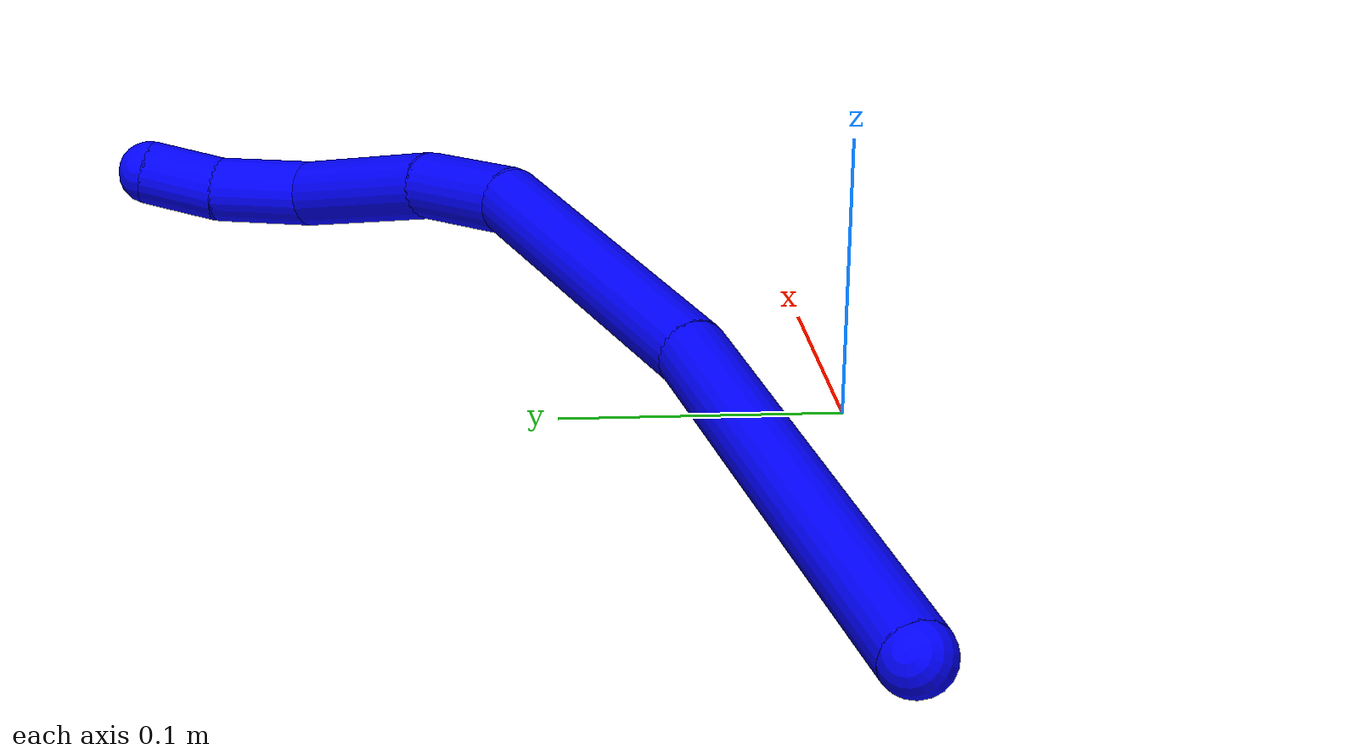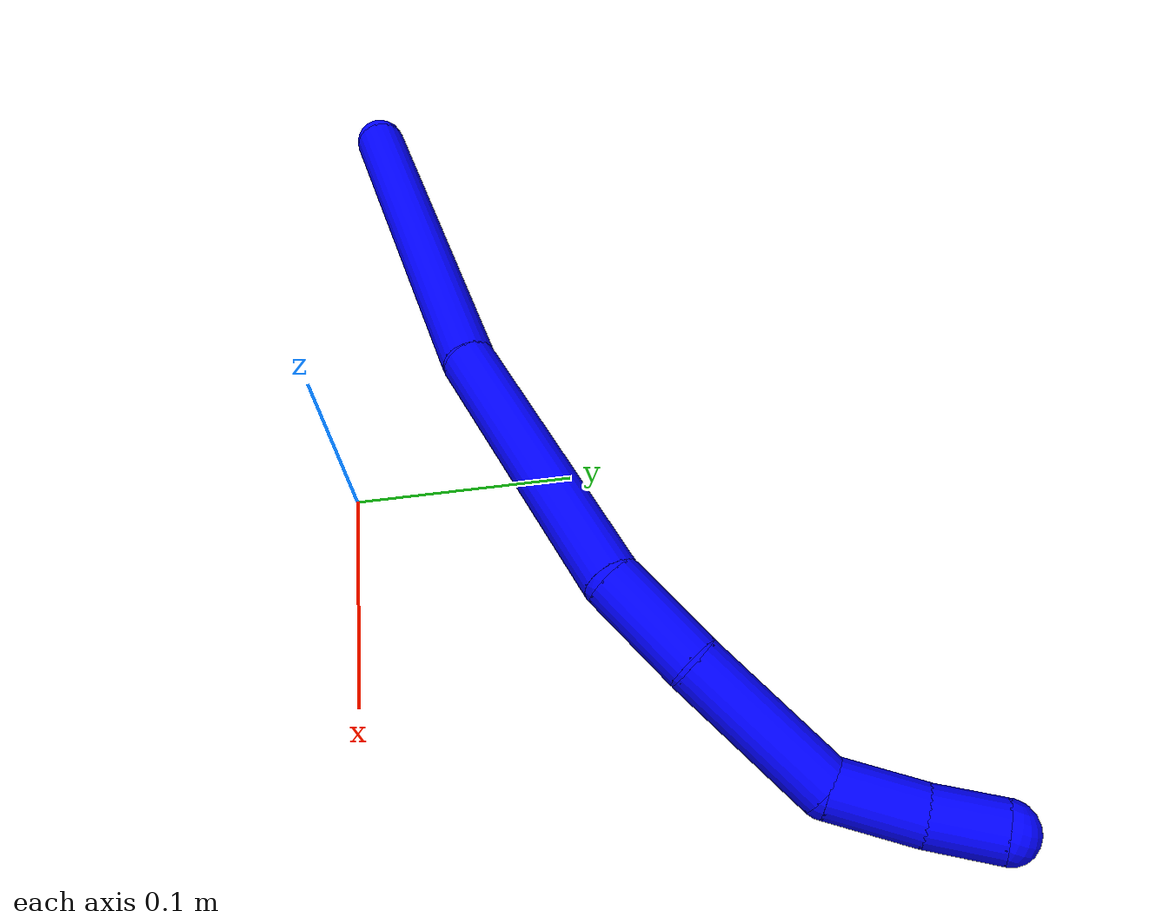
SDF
<sdf version="1.7">
 <world name="default">
  <plugin name="TubeGeneratorPlugin" filename="libtube_generator_plugin.so"/>
  <model name="photoneo_s_sensor">
   <static>1</static>
   <pose>0 0 2 1.57079 1.57079 3.14159</pose>
   <link name="link">
    <inertial><mass>0.1</mass></inertial>
    <sensor name="sensor" type="depth">
     <update_rate>30</update_rate>
     <camera>
      <horizontal_fov>1.22</horizontal_fov>
      <image><width>1920</width><height>1200</height><format>B8G8R8</format></image>
      <clip><near>0.1</near><far>4</far></clip>
      <depth_camera><output>points</output></depth_camera>
     </camera>
     <plugin name="camera_plugin" filename="libgazebo_ros_depth_camera.so">
      <baseline>0.2</baseline>
      <alwaysOn>1</alwaysOn>
      <updateRate>0.0</updateRate>
      <cameraName>camera_ir</cameraName>
      <imageTopicName>/camera/color/image_raw</imageTopicName>
      <cameraInfoTopicName>/camera/color/camera_info</cameraInfoTopicName>
      <depthImageTopicName>/camera/depth/image_raw</depthImageTopicName>
      <depthImageCameraInfoTopicName>/camera/depth/camera_info</depthImageCameraInfoTopicName>
      <pointCloudTopicName>/camera/depth/points</pointCloudTopicName>
      <frameName>fr_optical</frameName>
      <pointCloudCutoff>0.1</pointCloudCutoff>
      <pointCloudCutoffMax>2.0</pointCloudCutoffMax>
      <distortionK1>0</distortionK1>
      <distortionK2>0</distortionK2>
      <distortionK3>0</distortionK3>
      <distortionT1>0</distortionT1>
      <distortionT2>0</distortionT2>
      <CxPrime>0</CxPrime>
      <Cx>0</Cx>
      <Cy>0</Cy>
      <focalLength>0</focalLength>
      <hackBaseline>0</hackBaseline>
     </plugin>
    </sensor>
   </link>
  </model>
  <gravity>0 0 -9.8</gravity>
  <magnetic_field>6e-06 2.3e-05 -4.2e-05</magnetic_field>
  <atmosphere type="adiabatic"/>
  <physics name="default_physics" default="0" type="ode">
   <max_step_size>0.003</max_step_size>
   <real_time_factor>1</real_time_factor>
   <real_time_update_rate>1000</real_time_update_rate>
   <max_contacts>10000</max_contacts>
   <ode>
    <solver>
     <type>quick</type>
     <iters>100</iters>
     <sor>1.3</sor>
     <use_dynamic_moi_rescaling>0</use_dynamic_moi_rescaling>
    </solver>
    <constraints>
     <contact_max_correcting_vel>0</contact_max_correcting_vel>
     <contact_surface_layer>0.001</contact_surface_layer>
     <cfm>0</cfm>
     <erp>0.2</erp>
    </constraints>
   </ode>
  </physics>
  <scene><ambient>0.4 0.4 0.4 1</ambient><background>0.7 0.7 0.7 1</background><shadows>0</shadows></scene>
  <audio><device>default</device></audio>
  <spherical_coordinates>
   <surface_model>EARTH_WGS84</surface_model>
   <latitude_deg>0</latitude_deg>
   <longitude_deg>0</longitude_deg>
   <elevation>0</elevation>
   <heading_deg>0</heading_deg>
  </spherical_coordinates>
  <model name="bin">
   <static>1</static>
   <link name="bottom">
    <collision name="collision-bottom">
     <pose>0 0 -0.01 0 -0 0</pose>
     <geometry><box><size>0.8 0.6 0.02</size></box></geometry>
     <surface>
      <friction><ode><mu>100</mu><mu2>100</mu2></ode></friction>
      <contact><collide_bitmask>65535</collide_bitmask></contact>
     </surface>
    </collision>
   </link>
   <link name="west_wall">
    <collision name="collision-west_wall">
     <pose>-0.41 0 0.1 0 -0 0</pose>
     <geometry><box><size>0.02 0.6 0.2</size></box></geometry>
     <surface>
      <friction><ode><mu>100</mu><mu2>100</mu2></ode></friction>
      <contact><collide_bitmask>65535</collide_bitmask></contact>
     </surface>
    </collision>
   </link>
   <link name="east_wall">
    <collision name="collision-east_wall">
     <pose>0.41 0 0.1 0 -0 0</pose>
     <geometry><box><size>0.02 0.6 0.2</size></box></geometry>
     <surface>
      <friction><ode><mu>100</mu><mu2>100</mu2></ode></friction>
      <contact><collide_bitmask>65535</collide_bitmask></contact>
     </surface>
    </collision>
   </link>
   <link name="south_wall">
    <collision name="collision-south_wall">
     <pose>0 -0.31 0.1 0 -0 0</pose>
     <geometry><box><size>0.8 0.02 0.2</size></box></geometry>
     <surface>
      <friction><ode><mu>100</mu><mu2>100</mu2></ode></friction>
      <contact><collide_bitmask>65535</collide_bitmask></contact>
     </surface>
    </collision>
   </link>
   <link name="north_wall">
    <collision name="collision-north_wall">
     <pose>0 0.31 0.1 0 -0 0</pose>
     <geometry><box><size>0.8 0.02 0.2</size></box></geometry>
     <surface>
      <friction><ode><mu>100</mu><mu2>100</mu2></ode></friction>
      <contact><collide_bitmask>65535</collide_bitmask></contact>
     </surface>
    </collision>
   </link>
  </model>
  <model name="1">
   <static>0</static>
   <link name="1">
    <collision name="collision-cylinder-e_1_1_4">
     <pose>0.005158 0.076764 0.047371 -1.01791 0.057116 -0.031876</pose>
     <geometry><cylinder><radius>0.0125</radius><length>0.180702</length></cylinder></geometry>
     <surface>
      <friction><ode><mu>1.16</mu><mu2>1.16</mu2><slip1>0</slip1><slip2>0</slip2></ode></friction>
      <contact><ode><kp>1e+06</kp><kd>1</kd><max_vel>0</max_vel><min_depth>0.001</min_depth></ode></contact>
     </surface>
    </collision>
    <visual name="visual-cylinder-e_1_1_4">
     <pose>0.005158 0.076764 0.047371 -1.01791 0.057116 -0.031876</pose>
     <geometry><cylinder><radius>0.0125</radius><length>0.180702</length></cylinder></geometry>
     <material><ambient>0 0 1 1</ambient></material>
    </visual>
    <collision name="collision-cylinder-e_2_4_5">
     <pose>0.023823 0.212303 0.125302 -1.09129 0.201148 -0.122384</pose>
     <geometry><cylinder><radius>0.0125</radius><length>0.135216</length></cylinder></geometry>
     <surface>
      <friction><ode><mu>1.16</mu><mu2>1.16</mu2><slip1>0</slip1><slip2>0</slip2></ode></friction>
      <contact><ode><kp>1e+06</kp><kd>1</kd><max_vel>0</max_vel><min_depth>0.001</min_depth></ode></contact>
     </surface>
    </collision>
    <visual name="visual-cylinder-e_2_4_5">
     <pose>0.023823 0.212303 0.125302 -1.09129 0.201148 -0.122384</pose>
     <geometry><cylinder><radius>0.0125</radius><length>0.135216</length></cylinder></geometry>
     <material><ambient>0 0 1 1</ambient></material>
    </visual>
    <collision name="collision-cylinder-e_3_5_6">
     <pose>0.049028 0.288894 0.164641 -1.11306 0.532213 -0.335952</pose>
     <geometry><cylinder><radius>0.0125</radius><length>0.046101</length></cylinder></geometry>
     <surface>
      <friction><ode><mu>1.16</mu><mu2>1.16</mu2><slip1>0</slip1><slip2>0</slip2></ode></friction>
      <contact><ode><kp>1e+06</kp><kd>1</kd><max_vel>0</max_vel><min_depth>0.001</min_depth></ode></contact>
     </surface>
    </collision>
    <visual name="visual-cylinder-e_3_5_6">
     <pose>0.049028 0.288894 0.164641 -1.11306 0.532213 -0.335952</pose>
     <geometry><cylinder><radius>0.0125</radius><length>0.046101</length></cylinder></geometry>
     <material><ambient>0 0 1 1</ambient></material>
    </visual>
    <collision name="collision-cylinder-e_4_6_7">
     <pose>0.08294 0.329499 0.186601 -1.04634 0.700928 -0.415601</pose>
     <geometry><cylinder><radius>0.0125</radius><length>0.068892</length></cylinder></geometry>
     <surface>
      <friction><ode><mu>1.16</mu><mu2>1.16</mu2><slip1>0</slip1><slip2>0</slip2></ode></friction>
      <contact><ode><kp>1e+06</kp><kd>1</kd><max_vel>0</max_vel><min_depth>0.001</min_depth></ode></contact>
     </surface>
    </collision>
    <visual name="visual-cylinder-e_4_6_7">
     <pose>0.08294 0.329499 0.186601 -1.04634 0.700928 -0.415601</pose>
     <geometry><cylinder><radius>0.0125</radius><length>0.068892</length></cylinder></geometry>
     <material><ambient>0 0 1 1</ambient></material>
    </visual>
    <collision name="collision-cylinder-e_5_7_8">
     <pose>0.119216 0.36545 0.198131 -1.69566 0.814438 -0.909381</pose>
     <geometry><cylinder><radius>0.0125</radius><length>0.038666</length></cylinder></geometry>
     <surface>
      <friction><ode><mu>1.16</mu><mu2>1.16</mu2><slip1>0</slip1><slip2>0</slip2></ode></friction>
      <contact><ode><kp>1e+06</kp><kd>1</kd><max_vel>0</max_vel><min_depth>0.001</min_depth></ode></contact>
     </surface>
    </collision>
    <visual name="visual-cylinder-e_5_7_8">
     <pose>0.119216 0.36545 0.198131 -1.69566 0.814438 -0.909381</pose>
     <geometry><cylinder><radius>0.0125</radius><length>0.038666</length></cylinder></geometry>
     <material><ambient>0 0 1 1</ambient></material>
    </visual>
    <collision name="collision-cylinder-e_6_8_2">
     <pose>0.142417 0.390339 0.193251 -1.83944 0.644484 -0.826028</pose>
     <geometry><cylinder><radius>0.0125</radius><length>0.030423</length></cylinder></geometry>
     <surface>
      <friction><ode><mu>1.16</mu><mu2>1.16</mu2><slip1>0</slip1><slip2>0</slip2></ode></friction>
      <contact><ode><kp>1e+06</kp><kd>1</kd><max_vel>0</max_vel><min_depth>0.001</min_depth></ode></contact>
     </surface>
    </collision>
    <visual name="visual-cylinder-e_6_8_2">
     <pose>0.142417 0.390339 0.193251 -1.83944 0.644484 -0.826028</pose>
     <geometry><cylinder><radius>0.0125</radius><length>0.030423</length></cylinder></geometry>
     <material><ambient>0 0 1 1</ambient></material>
    </visual>
    <collision name="collision-sphere-2">
     <pose>0.151556 0.402063 0.190023 0 -0 0</pose>
     <geometry><sphere><radius>0.0125</radius></sphere></geometry>
     <surface>
      <friction><ode><mu>1.16</mu><mu2>1.16</mu2><slip1>0</slip1><slip2>0</slip2></ode></friction>
      <contact><ode><kp>1e+06</kp><kd>1</kd><max_vel>0</max_vel><min_depth>0.001</min_depth></ode></contact>
     </surface>
    </collision>
    <visual name="visual-sphere-2">
     <pose>0.151556 0.402063 0.190023 0 -0 0</pose>
     <geometry><sphere><radius>0.0125</radius></sphere></geometry>
     <material><ambient>0 0 1 1</ambient></material>
    </visual>
    <collision name="collision-sphere-4">
     <pose>0.010315 0.153529 0.094741 0 -0 0</pose>
     <geometry><sphere><radius>0.0125</radius></sphere></geometry>
     <surface>
      <friction><ode><mu>1.16</mu><mu2>1.16</mu2><slip1>0</slip1><slip2>0</slip2></ode></friction>
      <contact><ode><kp>1e+06</kp><kd>1</kd><max_vel>0</max_vel><min_depth>0.001</min_depth></ode></contact>
     </surface>
    </collision>
    <visual name="visual-sphere-4">
     <pose>0.010315 0.153529 0.094741 0 -0 0</pose>
     <geometry><sphere><radius>0.0125</radius></sphere></geometry>
     <material><ambient>0 0 1 1</ambient></material>
    </visual>
    <collision name="collision-sphere-1">
     <geometry><sphere><radius>0.0125</radius></sphere></geometry>
     <surface>
      <friction><ode><mu>1.16</mu><mu2>1.16</mu2><slip1>0</slip1><slip2>0</slip2></ode></friction>
      <contact><ode><kp>1e+06</kp><kd>1</kd><max_vel>0</max_vel><min_depth>0.001</min_depth></ode></contact>
     </surface>
    </collision>
    <visual name="visual-sphere-1">
     <geometry><sphere><radius>0.0125</radius></sphere></geometry>
     <material><ambient>0 0 1 1</ambient></material>
    </visual>
    <collision name="collision-sphere-8">
     <pose>0.133278 0.378615 0.196478 0 -0 0</pose>
     <geometry><sphere><radius>0.0125</radius></sphere></geometry>
     <surface>
      <friction><ode><mu>1.16</mu><mu2>1.16</mu2><slip1>0</slip1><slip2>0</slip2></ode></friction>
      <contact><ode><kp>1e+06</kp><kd>1</kd><max_vel>0</max_vel><min_depth>0.001</min_depth></ode></contact>
     </surface>
    </collision>
    <visual name="visual-sphere-8">
     <pose>0.133278 0.378615 0.196478 0 -0 0</pose>
     <geometry><sphere><radius>0.0125</radius></sphere></geometry>
     <material><ambient>0 0 1 1</ambient></material>
    </visual>
    <collision name="collision-sphere-5">
     <pose>0.037331 0.271076 0.155864 0 -0 0</pose>
     <geometry><sphere><radius>0.0125</radius></sphere></geometry>
     <surface>
      <friction><ode><mu>1.16</mu><mu2>1.16</mu2><slip1>0</slip1><slip2>0</slip2></ode></friction>
      <contact><ode><kp>1e+06</kp><kd>1</kd><max_vel>0</max_vel><min_depth>0.001</min_depth></ode></contact>
     </surface>
    </collision>
    <visual name="visual-sphere-5">
     <pose>0.037331 0.271076 0.155864 0 -0 0</pose>
     <geometry><sphere><radius>0.0125</radius></sphere></geometry>
     <material><ambient>0 0 1 1</ambient></material>
    </visual>
    <collision name="collision-sphere-6">
     <pose>0.060725 0.306712 0.173419 0 -0 0</pose>
     <geometry><sphere><radius>0.0125</radius></sphere></geometry>
     <surface>
      <friction><ode><mu>1.16</mu><mu2>1.16</mu2><slip1>0</slip1><slip2>0</slip2></ode></friction>
      <contact><ode><kp>1e+06</kp><kd>1</kd><max_vel>0</max_vel><min_depth>0.001</min_depth></ode></contact>
     </surface>
    </collision>
    <visual name="visual-sphere-6">
     <pose>0.060725 0.306712 0.173419 0 -0 0</pose>
     <geometry><sphere><radius>0.0125</radius></sphere></geometry>
     <material><ambient>0 0 1 1</ambient></material>
    </visual>
    <collision name="collision-sphere-7">
     <pose>0.105155 0.352286 0.199783 0 -0 0</pose>
     <geometry><sphere><radius>0.0125</radius></sphere></geometry>
     <surface>
      <friction><ode><mu>1.16</mu><mu2>1.16</mu2><slip1>0</slip1><slip2>0</slip2></ode></friction>
      <contact><ode><kp>1e+06</kp><kd>1</kd><max_vel>0</max_vel><min_depth>0.001</min_depth></ode></contact>
     </surface>
    </collision>
    <visual name="visual-sphere-7">
     <pose>0.105155 0.352286 0.199783 0 -0 0</pose>
     <geometry><sphere><radius>0.0125</radius></sphere></geometry>
     <material><ambient>0 0 1 1</ambient></material>
    </visual>
    <inertial>
     <pose>0.042139 0.209204 0.118977 0 -0 0</pose>
     <mass>0.5</mass>
     <inertia>
      <ixx>0.00069</ixx>
      <ixy>0</ixy>
      <ixz>0</ixz>
      <iyy>0.000367</iyy>
      <iyz>0</iyz>
      <izz>-0.000729</izz>
     </inertia>
    </inertial>
   </link>
   <pose>-0.218261 0.016407 0.011893 2.32969 0.714898 1.59899</pose>
  </model>
 </world>
</sdf>
